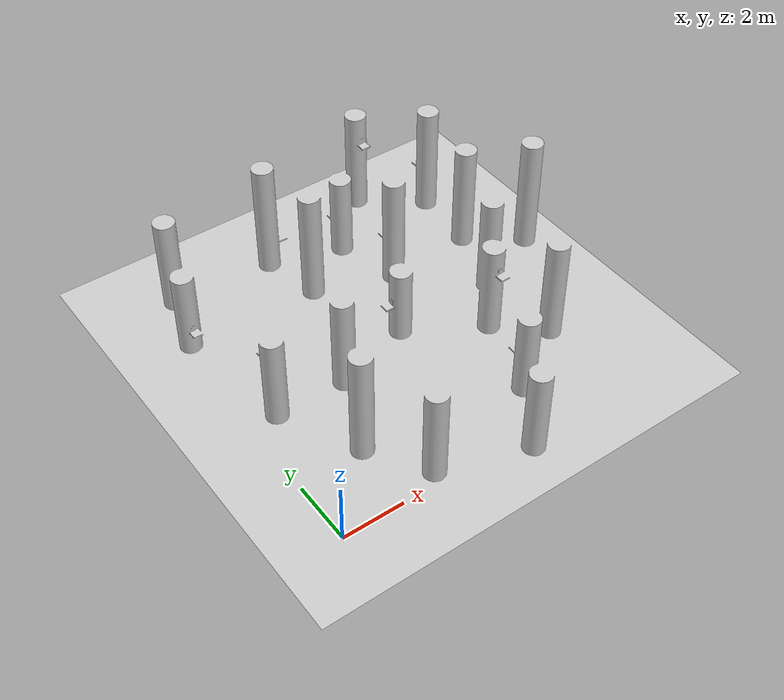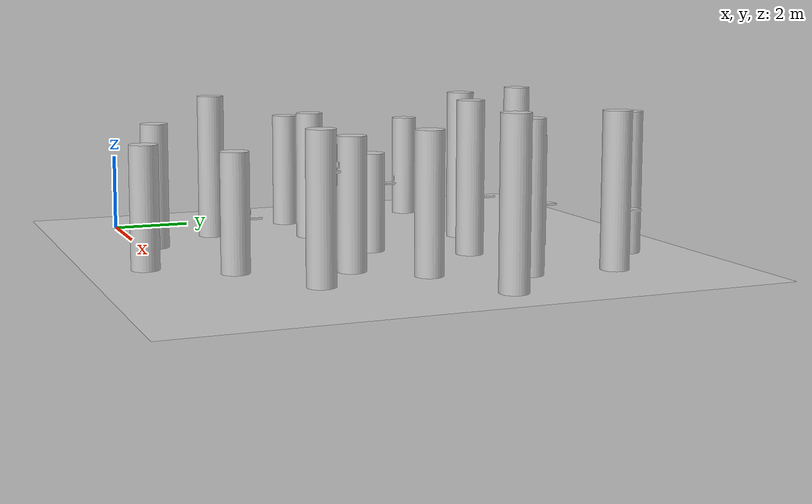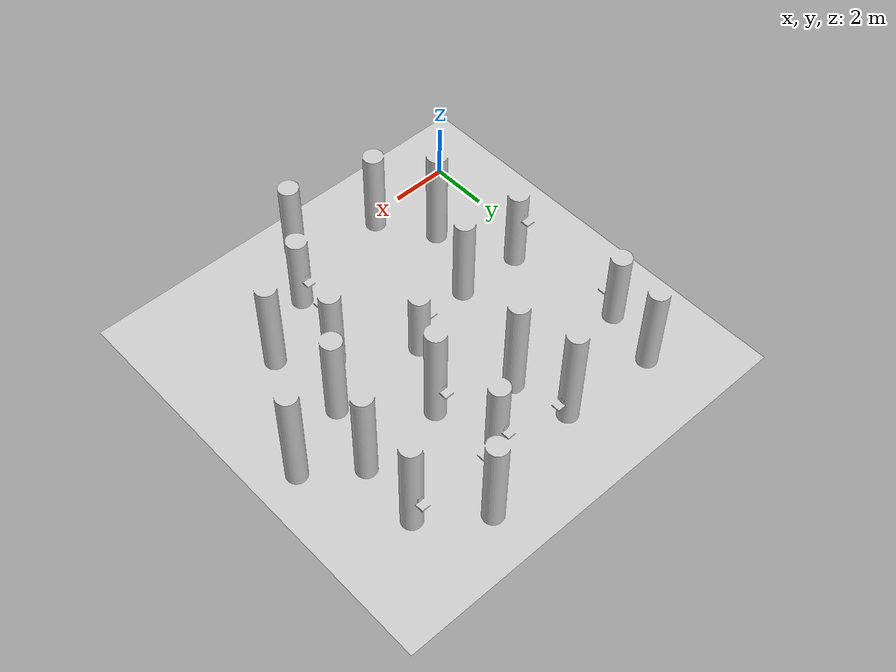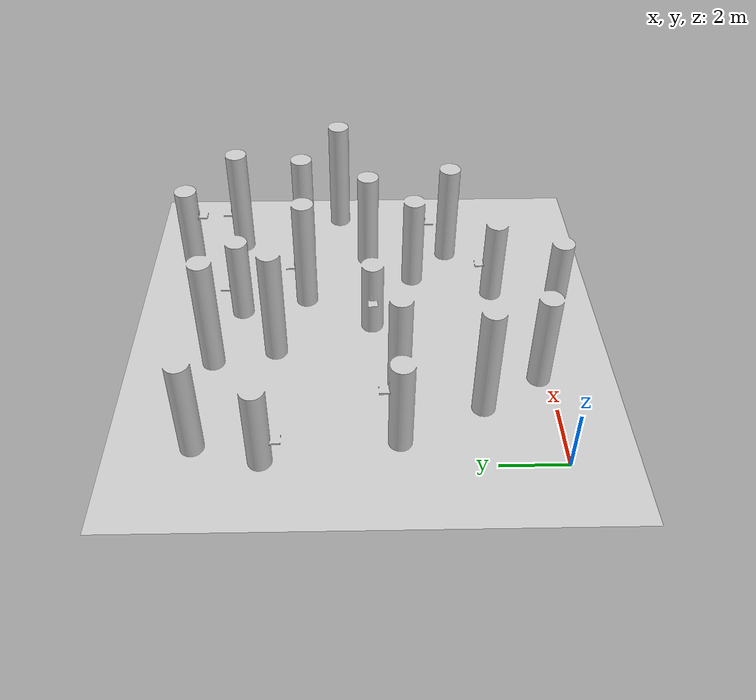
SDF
<?xml version="1.0" ?>
<sdf version="1.9">
  <model name="icuas26_2">
    <static>true</static>
    <link name="link">
      <collision name="collision">
        <geometry>
          <mesh>
            <uri>model://icuas26_2/meshes/icuas26_2.stl</uri>
          </mesh>
        </geometry>
      </collision>
      <visual name="visual">
        <geometry>
          <mesh>
            <uri>model://icuas26_2/meshes/icuas26_2.stl</uri>
          </mesh>
        </geometry>
        <material>
            <ambient>0.8 0.8 0.8 1</ambient>
            <diffuse>0.8 0.8 0.8 1</diffuse>
            <specular>0.8 0.8 0.8 1</specular>
        </material>
      </visual>
    </link>
  </model>
</sdf>
